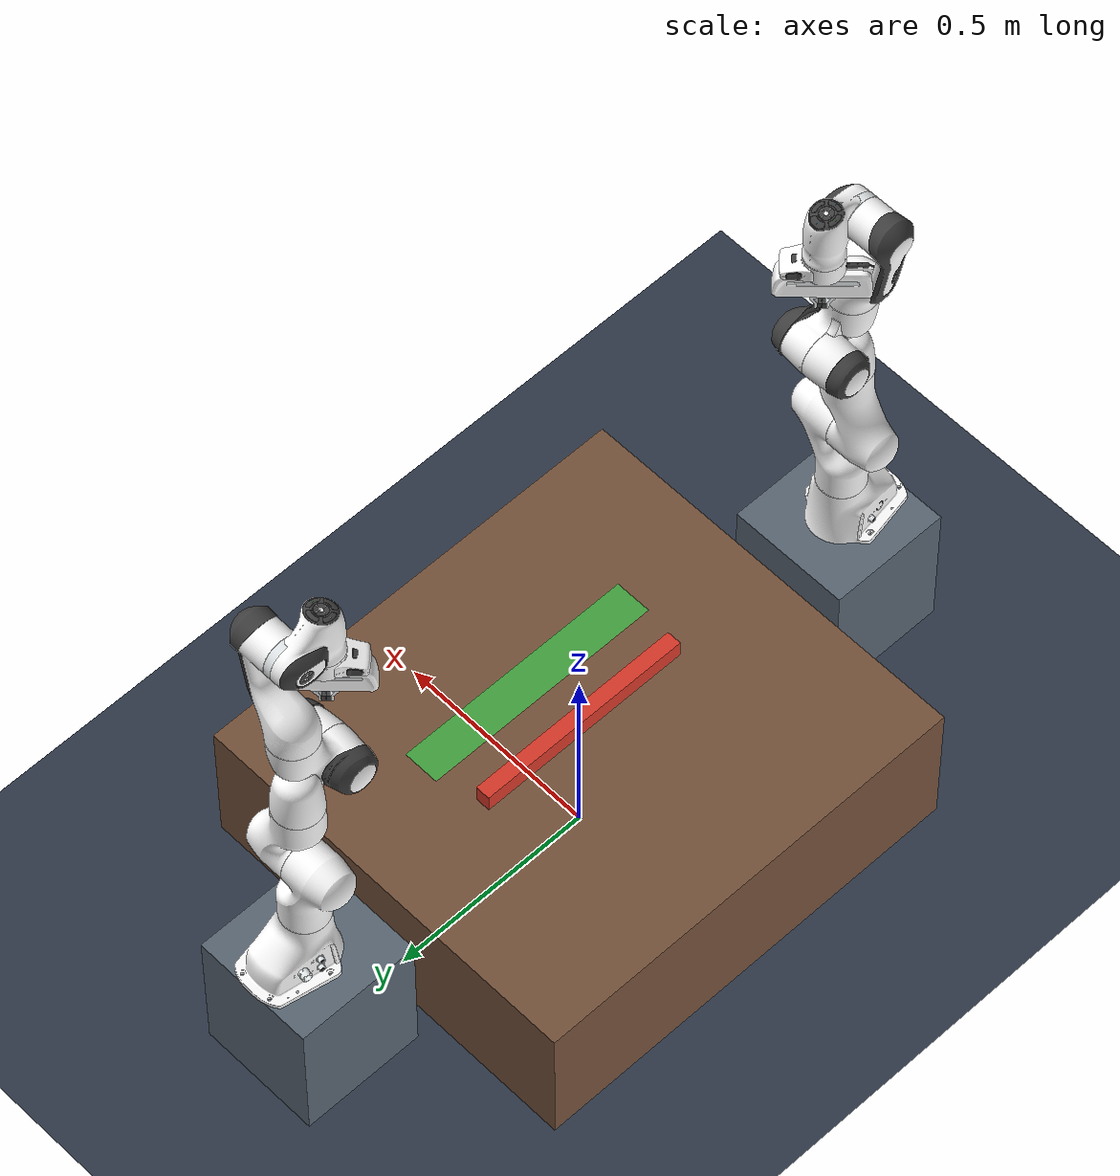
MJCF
<?xml version='1.0' encoding='utf-8'?>
<mujoco model="task3_bimanual_pick_carry_place">
  <compiler angle="radian" meshdir="../franka_emika_panda/assets" autolimits="true" />
  <option timestep="0.002" integrator="implicitfast" iterations="80" noslip_iterations="5" />
  <size njmax="3000" nconmax="500" />
  <visual>
    <global offwidth="640" offheight="480" />
    <headlight ambient="0.35 0.35 0.35" diffuse="0.7 0.7 0.7" />
  </visual>
  <default>
    <default class="panda">
      <material specular="0.5" shininess="0.25" />
      <joint armature="0.1" damping="1" axis="0 0 1" range="-2.8973 2.8973" />
      <general dyntype="none" biastype="affine" ctrlrange="-2.8973 2.8973" forcerange="-87 87" />
      <default class="finger">
        <joint axis="0 1 0" type="slide" range="0 0.04" />
      </default>
      <default class="visual">
        <geom type="mesh" contype="0" conaffinity="0" group="2" />
      </default>
      <default class="collision">
        <geom type="mesh" group="3" />
        <default class="fingertip_pad_collision_1">
          <geom type="box" size="0.0085 0.004 0.0085" pos="0 0.0055 0.0445" />
        </default>
        <default class="fingertip_pad_collision_2">
          <geom type="box" size="0.003 0.002 0.003" pos="0.0055 0.002 0.05" />
        </default>
        <default class="fingertip_pad_collision_3">
          <geom type="box" size="0.003 0.002 0.003" pos="-0.0055 0.002 0.05" />
        </default>
        <default class="fingertip_pad_collision_4">
          <geom type="box" size="0.003 0.002 0.0035" pos="0.0055 0.002 0.0395" />
        </default>
        <default class="fingertip_pad_collision_5">
          <geom type="box" size="0.003 0.002 0.0035" pos="-0.0055 0.002 0.0395" />
        </default>
      </default>
    </default>
  </default>
  <asset>
    <material class="panda" name="white" rgba="1 1 1 1" />
    <material class="panda" name="off_white" rgba="0.901961 0.921569 0.929412 1" />
    <material class="panda" name="black" rgba="0.25 0.25 0.25 1" />
    <material class="panda" name="green" rgba="0 1 0 1" />
    <material class="panda" name="light_blue" rgba="0.039216 0.541176 0.780392 1" />
    <mesh name="link0_c" file="link0.stl" />
    <mesh name="link1_c" file="link1.stl" />
    <mesh name="link2_c" file="link2.stl" />
    <mesh name="link3_c" file="link3.stl" />
    <mesh name="link4_c" file="link4.stl" />
    <mesh name="link5_c0" file="link5_collision_0.obj" />
    <mesh name="link5_c1" file="link5_collision_1.obj" />
    <mesh name="link5_c2" file="link5_collision_2.obj" />
    <mesh name="link6_c" file="link6.stl" />
    <mesh name="link7_c" file="link7.stl" />
    <mesh name="hand_c" file="hand.stl" />
    <mesh file="link0_0.obj" />
    <mesh file="link0_1.obj" />
    <mesh file="link0_2.obj" />
    <mesh file="link0_3.obj" />
    <mesh file="link0_4.obj" />
    <mesh file="link0_5.obj" />
    <mesh file="link0_7.obj" />
    <mesh file="link0_8.obj" />
    <mesh file="link0_9.obj" />
    <mesh file="link0_10.obj" />
    <mesh file="link0_11.obj" />
    <mesh file="link1.obj" />
    <mesh file="link2.obj" />
    <mesh file="link3_0.obj" />
    <mesh file="link3_1.obj" />
    <mesh file="link3_2.obj" />
    <mesh file="link3_3.obj" />
    <mesh file="link4_0.obj" />
    <mesh file="link4_1.obj" />
    <mesh file="link4_2.obj" />
    <mesh file="link4_3.obj" />
    <mesh file="link5_0.obj" />
    <mesh file="link5_1.obj" />
    <mesh file="link5_2.obj" />
    <mesh file="link6_0.obj" />
    <mesh file="link6_1.obj" />
    <mesh file="link6_2.obj" />
    <mesh file="link6_3.obj" />
    <mesh file="link6_4.obj" />
    <mesh file="link6_5.obj" />
    <mesh file="link6_6.obj" />
    <mesh file="link6_7.obj" />
    <mesh file="link6_8.obj" />
    <mesh file="link6_9.obj" />
    <mesh file="link6_10.obj" />
    <mesh file="link6_11.obj" />
    <mesh file="link6_12.obj" />
    <mesh file="link6_13.obj" />
    <mesh file="link6_14.obj" />
    <mesh file="link6_15.obj" />
    <mesh file="link6_16.obj" />
    <mesh file="link7_0.obj" />
    <mesh file="link7_1.obj" />
    <mesh file="link7_2.obj" />
    <mesh file="link7_3.obj" />
    <mesh file="link7_4.obj" />
    <mesh file="link7_5.obj" />
    <mesh file="link7_6.obj" />
    <mesh file="link7_7.obj" />
    <mesh file="hand_0.obj" />
    <mesh file="hand_1.obj" />
    <mesh file="hand_2.obj" />
    <mesh file="hand_3.obj" />
    <mesh file="hand_4.obj" />
    <mesh file="finger_0.obj" />
    <mesh file="finger_1.obj" />
  </asset>
  <worldbody>
    <light name="task_light" pos="0 0 2" dir="0 0 -1" directional="true" />
    <geom name="floor" type="plane" size="2 2 0.05" rgba="0.18 0.22 0.28 1" />
    <body name="table" pos="0 0 0.175">
      <geom name="table_geom" type="box" size="0.5 0.55 0.175" rgba="0.46 0.32 0.23 1" friction="1.5 0.1 0.02" />
    </body>
    <body name="left_pedestal" pos="0 -0.75 0.175">
      <geom name="left_pedestal_geom" type="box" size="0.15 0.15 0.175" rgba="0.35 0.4 0.45 1" />
    </body>
    <body name="left_link0" childclass="panda" pos="0 -0.75 0.35" quat="0.70710678 0 0 0.70710678">
      <inertial mass="0.629769" pos="-0.041018 -0.00014 0.049974" fullinertia="0.00315 0.00388 0.004285 8.2904e-7 0.00015 8.2299e-6" />
      <geom mesh="link0_0" material="off_white" class="visual" name="left_geom_2" />
      <geom mesh="link0_1" material="black" class="visual" name="left_geom_3" />
      <geom mesh="link0_2" material="off_white" class="visual" name="left_geom_4" />
      <geom mesh="link0_3" material="black" class="visual" name="left_geom_5" />
      <geom mesh="link0_4" material="off_white" class="visual" name="left_geom_6" />
      <geom mesh="link0_5" material="black" class="visual" name="left_geom_7" />
      <geom mesh="link0_7" material="white" class="visual" name="left_geom_8" />
      <geom mesh="link0_8" material="white" class="visual" name="left_geom_9" />
      <geom mesh="link0_9" material="black" class="visual" name="left_geom_10" />
      <geom mesh="link0_10" material="off_white" class="visual" name="left_geom_11" />
      <geom mesh="link0_11" material="white" class="visual" name="left_geom_12" />
      <geom mesh="link0_c" class="collision" name="left_geom_13" />
      <body name="left_link1" pos="0 0 0.333">
        <inertial mass="4.970684" pos="0.003875 0.002081 -0.04762" fullinertia="0.70337 0.70661 0.0091170 -0.00013900 0.0067720 0.019169" />
        <joint name="left_joint1" />
        <geom material="white" mesh="link1" class="visual" name="left_geom_17" />
        <geom mesh="link1_c" class="collision" name="left_geom_18" />
        <body name="left_link2" quat="1 -1 0 0">
          <inertial mass="0.646926" pos="-0.003141 -0.02872 0.003495" fullinertia="0.0079620 2.8110e-2 2.5995e-2 -3.925e-3 1.0254e-2 7.04e-4" />
          <joint name="left_joint2" range="-1.7628 1.7628" />
          <geom material="white" mesh="link2" class="visual" name="left_geom_22" />
          <geom mesh="link2_c" class="collision" name="left_geom_23" />
          <body name="left_link3" pos="0 -0.316 0" quat="1 1 0 0">
            <joint name="left_joint3" />
            <inertial mass="3.228604" pos="2.7518e-2 3.9252e-2 -6.6502e-2" fullinertia="3.7242e-2 3.6155e-2 1.083e-2 -4.761e-3 -1.1396e-2 -1.2805e-2" />
            <geom mesh="link3_0" material="white" class="visual" name="left_geom_27" />
            <geom mesh="link3_1" material="white" class="visual" name="left_geom_28" />
            <geom mesh="link3_2" material="white" class="visual" name="left_geom_29" />
            <geom mesh="link3_3" material="black" class="visual" name="left_geom_30" />
            <geom mesh="link3_c" class="collision" name="left_geom_31" />
            <body name="left_link4" pos="0.0825 0 0" quat="1 1 0 0">
              <inertial mass="3.587895" pos="-5.317e-2 1.04419e-1 2.7454e-2" fullinertia="2.5853e-2 1.9552e-2 2.8323e-2 7.796e-3 -1.332e-3 8.641e-3" />
              <joint name="left_joint4" range="-3.0718 -0.0698" />
              <geom mesh="link4_0" material="white" class="visual" name="left_geom_35" />
              <geom mesh="link4_1" material="white" class="visual" name="left_geom_36" />
              <geom mesh="link4_2" material="black" class="visual" name="left_geom_37" />
              <geom mesh="link4_3" material="white" class="visual" name="left_geom_38" />
              <geom mesh="link4_c" class="collision" name="left_geom_39" />
              <body name="left_link5" pos="-0.0825 0.384 0" quat="1 -1 0 0">
                <inertial mass="1.225946" pos="-1.1953e-2 4.1065e-2 -3.8437e-2" fullinertia="3.5549e-2 2.9474e-2 8.627e-3 -2.117e-3 -4.037e-3 2.29e-4" />
                <joint name="left_joint5" />
                <geom mesh="link5_0" material="black" class="visual" name="left_geom_43" />
                <geom mesh="link5_1" material="white" class="visual" name="left_geom_44" />
                <geom mesh="link5_2" material="white" class="visual" name="left_geom_45" />
                <geom mesh="link5_c0" class="collision" name="left_geom_46" />
                <geom mesh="link5_c1" class="collision" name="left_geom_47" />
                <geom mesh="link5_c2" class="collision" name="left_geom_48" />
                <body name="left_link6" quat="1 1 0 0">
                  <inertial mass="1.666555" pos="6.0149e-2 -1.4117e-2 -1.0517e-2" fullinertia="1.964e-3 4.354e-3 5.433e-3 1.09e-4 -1.158e-3 3.41e-4" />
                  <joint name="left_joint6" range="-0.0175 3.7525" />
                  <geom mesh="link6_0" material="off_white" class="visual" name="left_geom_52" />
                  <geom mesh="link6_1" material="white" class="visual" name="left_geom_53" />
                  <geom mesh="link6_2" material="black" class="visual" name="left_geom_54" />
                  <geom mesh="link6_3" material="white" class="visual" name="left_geom_55" />
                  <geom mesh="link6_4" material="white" class="visual" name="left_geom_56" />
                  <geom mesh="link6_5" material="white" class="visual" name="left_geom_57" />
                  <geom mesh="link6_6" material="white" class="visual" name="left_geom_58" />
                  <geom mesh="link6_7" material="light_blue" class="visual" name="left_geom_59" />
                  <geom mesh="link6_8" material="light_blue" class="visual" name="left_geom_60" />
                  <geom mesh="link6_9" material="black" class="visual" name="left_geom_61" />
                  <geom mesh="link6_10" material="black" class="visual" name="left_geom_62" />
                  <geom mesh="link6_11" material="white" class="visual" name="left_geom_63" />
                  <geom mesh="link6_12" material="green" class="visual" name="left_geom_64" />
                  <geom mesh="link6_13" material="white" class="visual" name="left_geom_65" />
                  <geom mesh="link6_14" material="black" class="visual" name="left_geom_66" />
                  <geom mesh="link6_15" material="black" class="visual" name="left_geom_67" />
                  <geom mesh="link6_16" material="white" class="visual" name="left_geom_68" />
                  <geom mesh="link6_c" class="collision" name="left_geom_69" />
                  <body name="left_link7" pos="0.088 0 0" quat="1 1 0 0">
                    <inertial mass="7.35522e-01" pos="1.0517e-2 -4.252e-3 6.1597e-2" fullinertia="1.2516e-2 1.0027e-2 4.815e-3 -4.28e-4 -1.196e-3 -7.41e-4" />
                    <joint name="left_joint7" />
                    <geom mesh="link7_0" material="white" class="visual" name="left_geom_73" />
                    <geom mesh="link7_1" material="black" class="visual" name="left_geom_74" />
                    <geom mesh="link7_2" material="black" class="visual" name="left_geom_75" />
                    <geom mesh="link7_3" material="black" class="visual" name="left_geom_76" />
                    <geom mesh="link7_4" material="black" class="visual" name="left_geom_77" />
                    <geom mesh="link7_5" material="black" class="visual" name="left_geom_78" />
                    <geom mesh="link7_6" material="black" class="visual" name="left_geom_79" />
                    <geom mesh="link7_7" material="white" class="visual" name="left_geom_80" />
                    <geom mesh="link7_c" class="collision" name="left_geom_81" />
                    <body name="left_hand" pos="0 0 0.107" quat="0.9238795 0 0 -0.3826834">
                      <inertial mass="0.73" pos="-0.01 0 0.03" diaginertia="0.001 0.0025 0.0017" />
                      <geom mesh="hand_0" material="off_white" class="visual" name="left_geom_84" />
                      <geom mesh="hand_1" material="black" class="visual" name="left_geom_85" />
                      <geom mesh="hand_2" material="black" class="visual" name="left_geom_86" />
                      <geom mesh="hand_3" material="white" class="visual" name="left_geom_87" />
                      <geom mesh="hand_4" material="off_white" class="visual" name="left_geom_88" />
                      <geom mesh="hand_c" class="collision" name="left_geom_89" />
                      <body name="left_left_finger" pos="0 0 0.0584">
                        <inertial mass="0.015" pos="0 0 0" diaginertia="2.375e-6 2.375e-6 7.5e-7" />
                        <joint name="left_finger_joint1" class="finger" />
                        <geom mesh="finger_0" material="off_white" class="visual" name="left_geom_93" />
                        <geom mesh="finger_1" material="black" class="visual" name="left_geom_94" />
                        <geom mesh="finger_0" class="collision" name="left_geom_95" friction="4 0.1 0.02" condim="6" />
                        <geom class="fingertip_pad_collision_1" name="left_geom_96" friction="4 0.1 0.02" condim="6" />
                        <geom class="fingertip_pad_collision_2" name="left_geom_97" friction="4 0.1 0.02" condim="6" />
                        <geom class="fingertip_pad_collision_3" name="left_geom_98" friction="4 0.1 0.02" condim="6" />
                        <geom class="fingertip_pad_collision_4" name="left_geom_99" friction="4 0.1 0.02" condim="6" />
                        <geom class="fingertip_pad_collision_5" name="left_geom_100" friction="4 0.1 0.02" condim="6" />
                      </body>
                      <body name="left_right_finger" pos="0 0 0.0584" quat="0 0 0 1">
                        <inertial mass="0.015" pos="0 0 0" diaginertia="2.375e-6 2.375e-6 7.5e-7" />
                        <joint name="left_finger_joint2" class="finger" />
                        <geom mesh="finger_0" material="off_white" class="visual" name="left_geom_104" />
                        <geom mesh="finger_1" material="black" class="visual" name="left_geom_105" />
                        <geom mesh="finger_0" class="collision" name="left_geom_106" friction="4 0.1 0.02" condim="6" />
                        <geom class="fingertip_pad_collision_1" name="left_geom_107" friction="4 0.1 0.02" condim="6" />
                        <geom class="fingertip_pad_collision_2" name="left_geom_108" friction="4 0.1 0.02" condim="6" />
                        <geom class="fingertip_pad_collision_3" name="left_geom_109" friction="4 0.1 0.02" condim="6" />
                        <geom class="fingertip_pad_collision_4" name="left_geom_110" friction="4 0.1 0.02" condim="6" />
                        <geom class="fingertip_pad_collision_5" name="left_geom_111" friction="4 0.1 0.02" condim="6" />
                      </body>
                      <site name="left_ee" pos="0 0 0.103" size="0.006" rgba="0 0.7 1 0.6" />
                    </body>
                  </body>
                </body>
              </body>
            </body>
          </body>
        </body>
      </body>
    </body>
    <body name="right_pedestal" pos="0 0.75 0.175">
      <geom name="right_pedestal_geom" type="box" size="0.15 0.15 0.175" rgba="0.35 0.4 0.45 1" />
    </body>
    <body name="right_link0" childclass="panda" pos="0 0.75 0.35" quat="0.70710678 0 0 -0.70710678">
      <inertial mass="0.629769" pos="-0.041018 -0.00014 0.049974" fullinertia="0.00315 0.00388 0.004285 8.2904e-7 0.00015 8.2299e-6" />
      <geom mesh="link0_0" material="off_white" class="visual" name="right_geom_2" />
      <geom mesh="link0_1" material="black" class="visual" name="right_geom_3" />
      <geom mesh="link0_2" material="off_white" class="visual" name="right_geom_4" />
      <geom mesh="link0_3" material="black" class="visual" name="right_geom_5" />
      <geom mesh="link0_4" material="off_white" class="visual" name="right_geom_6" />
      <geom mesh="link0_5" material="black" class="visual" name="right_geom_7" />
      <geom mesh="link0_7" material="white" class="visual" name="right_geom_8" />
      <geom mesh="link0_8" material="white" class="visual" name="right_geom_9" />
      <geom mesh="link0_9" material="black" class="visual" name="right_geom_10" />
      <geom mesh="link0_10" material="off_white" class="visual" name="right_geom_11" />
      <geom mesh="link0_11" material="white" class="visual" name="right_geom_12" />
      <geom mesh="link0_c" class="collision" name="right_geom_13" />
      <body name="right_link1" pos="0 0 0.333">
        <inertial mass="4.970684" pos="0.003875 0.002081 -0.04762" fullinertia="0.70337 0.70661 0.0091170 -0.00013900 0.0067720 0.019169" />
        <joint name="right_joint1" />
        <geom material="white" mesh="link1" class="visual" name="right_geom_17" />
        <geom mesh="link1_c" class="collision" name="right_geom_18" />
        <body name="right_link2" quat="1 -1 0 0">
          <inertial mass="0.646926" pos="-0.003141 -0.02872 0.003495" fullinertia="0.0079620 2.8110e-2 2.5995e-2 -3.925e-3 1.0254e-2 7.04e-4" />
          <joint name="right_joint2" range="-1.7628 1.7628" />
          <geom material="white" mesh="link2" class="visual" name="right_geom_22" />
          <geom mesh="link2_c" class="collision" name="right_geom_23" />
          <body name="right_link3" pos="0 -0.316 0" quat="1 1 0 0">
            <joint name="right_joint3" />
            <inertial mass="3.228604" pos="2.7518e-2 3.9252e-2 -6.6502e-2" fullinertia="3.7242e-2 3.6155e-2 1.083e-2 -4.761e-3 -1.1396e-2 -1.2805e-2" />
            <geom mesh="link3_0" material="white" class="visual" name="right_geom_27" />
            <geom mesh="link3_1" material="white" class="visual" name="right_geom_28" />
            <geom mesh="link3_2" material="white" class="visual" name="right_geom_29" />
            <geom mesh="link3_3" material="black" class="visual" name="right_geom_30" />
            <geom mesh="link3_c" class="collision" name="right_geom_31" />
            <body name="right_link4" pos="0.0825 0 0" quat="1 1 0 0">
              <inertial mass="3.587895" pos="-5.317e-2 1.04419e-1 2.7454e-2" fullinertia="2.5853e-2 1.9552e-2 2.8323e-2 7.796e-3 -1.332e-3 8.641e-3" />
              <joint name="right_joint4" range="-3.0718 -0.0698" />
              <geom mesh="link4_0" material="white" class="visual" name="right_geom_35" />
              <geom mesh="link4_1" material="white" class="visual" name="right_geom_36" />
              <geom mesh="link4_2" material="black" class="visual" name="right_geom_37" />
              <geom mesh="link4_3" material="white" class="visual" name="right_geom_38" />
              <geom mesh="link4_c" class="collision" name="right_geom_39" />
              <body name="right_link5" pos="-0.0825 0.384 0" quat="1 -1 0 0">
                <inertial mass="1.225946" pos="-1.1953e-2 4.1065e-2 -3.8437e-2" fullinertia="3.5549e-2 2.9474e-2 8.627e-3 -2.117e-3 -4.037e-3 2.29e-4" />
                <joint name="right_joint5" />
                <geom mesh="link5_0" material="black" class="visual" name="right_geom_43" />
                <geom mesh="link5_1" material="white" class="visual" name="right_geom_44" />
                <geom mesh="link5_2" material="white" class="visual" name="right_geom_45" />
                <geom mesh="link5_c0" class="collision" name="right_geom_46" />
                <geom mesh="link5_c1" class="collision" name="right_geom_47" />
                <geom mesh="link5_c2" class="collision" name="right_geom_48" />
                <body name="right_link6" quat="1 1 0 0">
                  <inertial mass="1.666555" pos="6.0149e-2 -1.4117e-2 -1.0517e-2" fullinertia="1.964e-3 4.354e-3 5.433e-3 1.09e-4 -1.158e-3 3.41e-4" />
                  <joint name="right_joint6" range="-0.0175 3.7525" />
                  <geom mesh="link6_0" material="off_white" class="visual" name="right_geom_52" />
                  <geom mesh="link6_1" material="white" class="visual" name="right_geom_53" />
                  <geom mesh="link6_2" material="black" class="visual" name="right_geom_54" />
                  <geom mesh="link6_3" material="white" class="visual" name="right_geom_55" />
                  <geom mesh="link6_4" material="white" class="visual" name="right_geom_56" />
                  <geom mesh="link6_5" material="white" class="visual" name="right_geom_57" />
                  <geom mesh="link6_6" material="white" class="visual" name="right_geom_58" />
                  <geom mesh="link6_7" material="light_blue" class="visual" name="right_geom_59" />
                  <geom mesh="link6_8" material="light_blue" class="visual" name="right_geom_60" />
                  <geom mesh="link6_9" material="black" class="visual" name="right_geom_61" />
                  <geom mesh="link6_10" material="black" class="visual" name="right_geom_62" />
                  <geom mesh="link6_11" material="white" class="visual" name="right_geom_63" />
                  <geom mesh="link6_12" material="green" class="visual" name="right_geom_64" />
                  <geom mesh="link6_13" material="white" class="visual" name="right_geom_65" />
                  <geom mesh="link6_14" material="black" class="visual" name="right_geom_66" />
                  <geom mesh="link6_15" material="black" class="visual" name="right_geom_67" />
                  <geom mesh="link6_16" material="white" class="visual" name="right_geom_68" />
                  <geom mesh="link6_c" class="collision" name="right_geom_69" />
                  <body name="right_link7" pos="0.088 0 0" quat="1 1 0 0">
                    <inertial mass="7.35522e-01" pos="1.0517e-2 -4.252e-3 6.1597e-2" fullinertia="1.2516e-2 1.0027e-2 4.815e-3 -4.28e-4 -1.196e-3 -7.41e-4" />
                    <joint name="right_joint7" />
                    <geom mesh="link7_0" material="white" class="visual" name="right_geom_73" />
                    <geom mesh="link7_1" material="black" class="visual" name="right_geom_74" />
                    <geom mesh="link7_2" material="black" class="visual" name="right_geom_75" />
                    <geom mesh="link7_3" material="black" class="visual" name="right_geom_76" />
                    <geom mesh="link7_4" material="black" class="visual" name="right_geom_77" />
                    <geom mesh="link7_5" material="black" class="visual" name="right_geom_78" />
                    <geom mesh="link7_6" material="black" class="visual" name="right_geom_79" />
                    <geom mesh="link7_7" material="white" class="visual" name="right_geom_80" />
                    <geom mesh="link7_c" class="collision" name="right_geom_81" />
                    <body name="right_hand" pos="0 0 0.107" quat="0.9238795 0 0 -0.3826834">
                      <inertial mass="0.73" pos="-0.01 0 0.03" diaginertia="0.001 0.0025 0.0017" />
                      <geom mesh="hand_0" material="off_white" class="visual" name="right_geom_84" />
                      <geom mesh="hand_1" material="black" class="visual" name="right_geom_85" />
                      <geom mesh="hand_2" material="black" class="visual" name="right_geom_86" />
                      <geom mesh="hand_3" material="white" class="visual" name="right_geom_87" />
                      <geom mesh="hand_4" material="off_white" class="visual" name="right_geom_88" />
                      <geom mesh="hand_c" class="collision" name="right_geom_89" />
                      <body name="right_left_finger" pos="0 0 0.0584">
                        <inertial mass="0.015" pos="0 0 0" diaginertia="2.375e-6 2.375e-6 7.5e-7" />
                        <joint name="right_finger_joint1" class="finger" />
                        <geom mesh="finger_0" material="off_white" class="visual" name="right_geom_93" />
                        <geom mesh="finger_1" material="black" class="visual" name="right_geom_94" />
                        <geom mesh="finger_0" class="collision" name="right_geom_95" friction="4 0.1 0.02" condim="6" />
                        <geom class="fingertip_pad_collision_1" name="right_geom_96" friction="4 0.1 0.02" condim="6" />
                        <geom class="fingertip_pad_collision_2" name="right_geom_97" friction="4 0.1 0.02" condim="6" />
                        <geom class="fingertip_pad_collision_3" name="right_geom_98" friction="4 0.1 0.02" condim="6" />
                        <geom class="fingertip_pad_collision_4" name="right_geom_99" friction="4 0.1 0.02" condim="6" />
                        <geom class="fingertip_pad_collision_5" name="right_geom_100" friction="4 0.1 0.02" condim="6" />
                      </body>
                      <body name="right_right_finger" pos="0 0 0.0584" quat="0 0 0 1">
                        <inertial mass="0.015" pos="0 0 0" diaginertia="2.375e-6 2.375e-6 7.5e-7" />
                        <joint name="right_finger_joint2" class="finger" />
                        <geom mesh="finger_0" material="off_white" class="visual" name="right_geom_104" />
                        <geom mesh="finger_1" material="black" class="visual" name="right_geom_105" />
                        <geom mesh="finger_0" class="collision" name="right_geom_106" friction="4 0.1 0.02" condim="6" />
                        <geom class="fingertip_pad_collision_1" name="right_geom_107" friction="4 0.1 0.02" condim="6" />
                        <geom class="fingertip_pad_collision_2" name="right_geom_108" friction="4 0.1 0.02" condim="6" />
                        <geom class="fingertip_pad_collision_3" name="right_geom_109" friction="4 0.1 0.02" condim="6" />
                        <geom class="fingertip_pad_collision_4" name="right_geom_110" friction="4 0.1 0.02" condim="6" />
                        <geom class="fingertip_pad_collision_5" name="right_geom_111" friction="4 0.1 0.02" condim="6" />
                      </body>
                      <site name="right_ee" pos="0 0 0.103" size="0.006" rgba="0 0.7 1 0.6" />
                    </body>
                  </body>
                </body>
              </body>
            </body>
          </body>
        </body>
      </body>
    </body>
    <body name="cooperative_object" pos="0 0 0.372">
      <freejoint name="object_freejoint" />
      <geom name="object_geom" type="box" size="0.018 0.27 0.022" mass="0.35" friction="3 0.1 0.02" condim="6" rgba="0.85 0.22 0.16 1" />
      <site name="left_grasp_site" pos="0 -0.22 0" size="0.004" rgba="1 0.9 0 1" />
      <site name="right_grasp_site" pos="0 0.22 0" size="0.004" rgba="1 0.9 0 1" />
    </body>
    <body name="target" pos="0.15 0 0.3505">
      <geom name="target_geom" type="box" size="0.045 0.3 0.0004" rgba="0.2 0.85 0.3 0.65" contype="0" conaffinity="0" />
    </body>
    <camera name="top" pos="0.04 0 3.35" xyaxes="0 1 0 -1 0 0" projection="orthographic" fovy="0.62" />
    <body name="front_camera_target" pos="0 0 0.53" />
    <camera name="front" pos="3 0 0.53" mode="targetbody" target="front_camera_target" projection="orthographic" fovy="0.62" />
    <body name="side_camera_target" pos="0.06 0 0.48" />
    <camera name="side" pos="2.2 -3 1.65" mode="targetbody" target="side_camera_target" projection="perspective" fovy="11.5" />
  </worldbody>
  <tendon>
    <fixed name="left_split">
      <joint joint="left_finger_joint1" coef="0.5" />
      <joint joint="left_finger_joint2" coef="0.5" />
    </fixed>
    <fixed name="right_split">
      <joint joint="right_finger_joint1" coef="0.5" />
      <joint joint="right_finger_joint2" coef="0.5" />
    </fixed>
  </tendon>
  <equality>
    <joint joint1="left_finger_joint1" joint2="left_finger_joint2" solimp="0.95 0.99 0.001" solref="0.005 1" name="left_finger_equality_0" />
    <joint joint1="right_finger_joint1" joint2="right_finger_joint2" solimp="0.95 0.99 0.001" solref="0.005 1" name="right_finger_equality_0" />
  </equality>
  <actuator>
    <general class="panda" name="left_actuator1" joint="left_joint1" gainprm="4500" biasprm="0 -4500 -450" />
    <general class="panda" name="left_actuator2" joint="left_joint2" gainprm="4500" biasprm="0 -4500 -450" ctrlrange="-1.7628 1.7628" />
    <general class="panda" name="left_actuator3" joint="left_joint3" gainprm="3500" biasprm="0 -3500 -350" />
    <general class="panda" name="left_actuator4" joint="left_joint4" gainprm="3500" biasprm="0 -3500 -350" ctrlrange="-3.0718 -0.0698" />
    <general class="panda" name="left_actuator5" joint="left_joint5" gainprm="2000" biasprm="0 -2000 -200" forcerange="-12 12" />
    <general class="panda" name="left_actuator6" joint="left_joint6" gainprm="2000" biasprm="0 -2000 -200" forcerange="-12 12" ctrlrange="-0.0175 3.7525" />
    <general class="panda" name="left_actuator7" joint="left_joint7" gainprm="2000" biasprm="0 -2000 -200" forcerange="-12 12" />
    <general class="panda" name="left_actuator8" tendon="left_split" forcerange="-100 100" ctrlrange="0 255" gainprm="0.01568627451 0 0" biasprm="0 -100 -10" />
    <general class="panda" name="right_actuator1" joint="right_joint1" gainprm="4500" biasprm="0 -4500 -450" />
    <general class="panda" name="right_actuator2" joint="right_joint2" gainprm="4500" biasprm="0 -4500 -450" ctrlrange="-1.7628 1.7628" />
    <general class="panda" name="right_actuator3" joint="right_joint3" gainprm="3500" biasprm="0 -3500 -350" />
    <general class="panda" name="right_actuator4" joint="right_joint4" gainprm="3500" biasprm="0 -3500 -350" ctrlrange="-3.0718 -0.0698" />
    <general class="panda" name="right_actuator5" joint="right_joint5" gainprm="2000" biasprm="0 -2000 -200" forcerange="-12 12" />
    <general class="panda" name="right_actuator6" joint="right_joint6" gainprm="2000" biasprm="0 -2000 -200" forcerange="-12 12" ctrlrange="-0.0175 3.7525" />
    <general class="panda" name="right_actuator7" joint="right_joint7" gainprm="2000" biasprm="0 -2000 -200" forcerange="-12 12" />
    <general class="panda" name="right_actuator8" tendon="right_split" forcerange="-100 100" ctrlrange="0 255" gainprm="0.01568627451 0 0" biasprm="0 -100 -10" />
  </actuator>
  <contact>
    <exclude body1="left_link0" body2="left_link1" />
    <exclude body1="right_link0" body2="right_link1" />
  </contact>
</mujoco>
